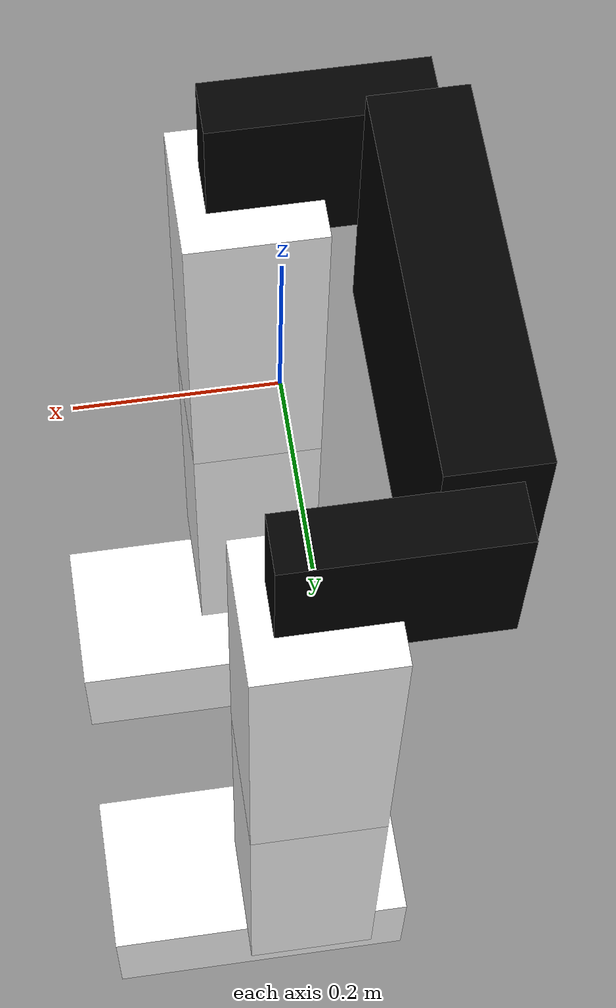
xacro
<?xml version="1.0"?>
<robot xmlns:xacro="http://www.ros.org/wiki/xacro" name="rex_collision">
  <xacro:property name="robotName" value="rex"/>
  <xacro:property name="pelvisWidth" value="0.470"/>
  <xacro:property name="upperLegDepth" value="0.15"/>
  <xacro:property name="upperLegWidth" value="0.15"/>
  <xacro:property name="upperLegHeight" value="0.43"/>
  <xacro:property name="lowerLegDepth" value="0.15"/>
  <xacro:property name="lowerLegWidth" value="0.15"/>
  <xacro:property name="lowerLegHeight" value="0.416"/>
  <xacro:property name="footDepth" value="0.366"/>
  <xacro:property name="footWidth" value="0.190"/>
  <xacro:property name="footHeight" value="0.144"/>
  <xacro:property name="footBackToAnkle" value="0.126"/>
  <xacro:property name="footInsideToAnkle" value="0.150"/>

  <!--NOTE: Floor to base_link distance = ${ref_foot}-footHeight-->

  <xacro:macro name="default_inertial" params="mass">
    <inertial>
      <mass value="${mass}"/>
      <inertia ixx="1.0" ixy="0.0" ixz="0.0" iyy="1.0" iyz="0.0" izz="1.0"/>
    </inertial>
  </xacro:macro>

  <xacro:macro name="upperleg" params="prefix reflect">
    <link name="${prefix}_upperleg">
      <visual>
        <geometry>
          <box size="${upperLegDepth} ${upperLegWidth} ${upperLegHeight}"/>
        </geometry>
        <origin xyz="0 0 -${upperLegHeight/2}" rpy="0 0 0"/>
        <material name="white">
          <color rgba="1 1 1 1"/>
        </material>
      </visual>
      <!--This is currently more of a place holder and not used...-->
      <xacro:default_inertial mass="10"/>
    </link>
    <joint name="pelvis_to_${prefix}_upperleg" type="revolute">
      <axis xyz="0 1 0"/>
      <parent link="${robotName}_base_link"/>
      <child link="${prefix}_upperleg"/>
      <origin xyz="0 ${reflect*pelvisWidth/2} 0"/>
      <limit effort="1000.0" lower="-${pi/4}" upper="${pi/4}" velocity="10"/>
    </joint>
  </xacro:macro>

  <xacro:macro name="lowerleg" params="prefix reflect">
    <link name="${prefix}_lowerleg">
      <visual>
        <geometry>
          <box size="${lowerLegDepth} ${lowerLegWidth} ${lowerLegHeight}"/>
        </geometry>
        <origin xyz="0 0 -${lowerLegHeight/2}" rpy="0 0 0"/>
        <material name="white">
          <color rgba="1 1 1 1"/>
        </material>
      </visual>
      <!--This is currently more of a place holder and not used...-->
      <xacro:default_inertial mass="10"/>
    </link>
    <joint name="${prefix}_upperleg_to_${prefix}_lowerleg" type="revolute">
      <axis xyz="0 1 0"/>
      <parent link="${prefix}_upperleg"/>
      <child link="${prefix}_lowerleg"/>
      <origin xyz="0 0 -${upperLegHeight}"/>
      <limit effort="1000.0" lower="-${pi/4}" upper="${pi/4}" velocity="10"/>
    </joint>
  </xacro:macro>

  <xacro:macro name="foot" params="prefix reflect">
    <link name="${prefix}_foot">
      <visual>
        <geometry>
          <box size="${footDepth} ${footWidth} ${footHeight}"/>
        </geometry>
        <origin xyz="${footDepth/2-footBackToAnkle} ${reflect*(footWidth/2-footInsideToAnkle)} -${footHeight/2}" rpy="0 0 0"/>
        <material name="white">
          <color rgba="1 1 1 1"/>
        </material>
      </visual>
      <!--This is currently more of a place holder and not used...-->
      <xacro:default_inertial mass="10"/>
    </link>
    <joint name="${prefix}_lowerleg_to_${prefix}_foot" type="revolute">
      <axis xyz="0 1 0"/>
      <parent link="${prefix}_lowerleg"/>
      <child link="${prefix}_foot"/>
      <origin xyz="0 0 -${lowerLegHeight}"/>
      <limit effort="1000.0" lower="-${pi/4}" upper="${pi/4}" velocity="10"/>
    </joint>
  </xacro:macro>

  <link name="${robotName}_base_link">
    <visual>
      <geometry>
        <box size="0.10 0.411 0.332"/>
      </geometry>
      <origin rpy="0 0 0" xyz="-0.160 0 -0.008"/>
      <material name="black">
        <color rgba="0 0 0 1"/>
      </material>
    </visual>
    <visual>
      <geometry>
        <box size="0.230 0.060 0.180"/>
      </geometry>
      <origin rpy="0 0 0" xyz="-0.07 ${pelvisWidth/2} 0.040"/>
      <material name="white">
        <color rgba="0 0 0 1"/>
      </material>
    </visual>
    <visual>
      <geometry>
        <box size="0.230 0.060 0.180"/>
      </geometry>
      <origin rpy="0 0 0" xyz="-0.07 -${pelvisWidth/2} 0.040"/>
      <material name="white">
        <color rgba="0 0 0 1"/>
      </material>
    </visual>
  </link>

  <xacro:upperleg prefix="right" reflect="-1"/>
  <xacro:upperleg prefix="left" reflect="1"/>
  <xacro:lowerleg prefix="right" reflect="-1"/>
  <xacro:lowerleg prefix="left" reflect="1"/>
  <xacro:foot prefix="right" reflect="-1"/>
  <xacro:foot prefix="left" reflect="1"/>
</robot>
